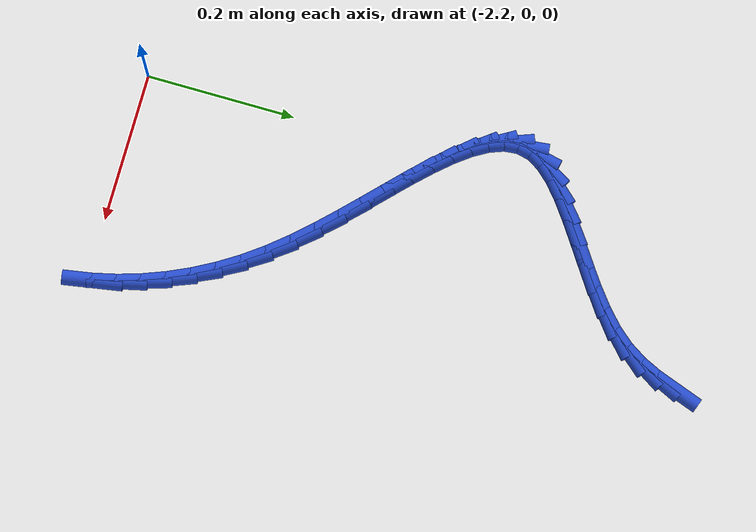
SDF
<sdf version="1.6">
 <world name="default">
  <model name="ground_plane">
   <static>1</static>
   <link name="link">
    <collision name="collision">
     <geometry><plane><normal>0 0 1</normal><size>100 100</size></plane></geometry>
     <surface><friction><ode><mu>100</mu><mu2>50</mu2></ode></friction></surface>
    </collision>
    <visual name="visual">
     <cast_shadows>0</cast_shadows>
     <geometry><plane><normal>0 0 1</normal><size>100 100</size></plane></geometry>
     <material>
      <script><uri>file://media/materials/scripts/gazebo.material</uri><name>Gazebo/WhiteGlow</name></script>
     </material>
    </visual>
   </link>
  </model>
  <model name="line">
   <link name="link_101">
    <pose>-1.989718927837971 0.7740408875233407 0.01 0 1.57 1.2281230694968996</pose>
    <collision name="collision">
     <geometry><cylinder><radius>0.01</radius><length>0.08</length></cylinder></geometry>
    </collision>
    <visual name="visual">
     <material>
      <script><name>Gazebo/Blue</name><uri>file://media/materials/scripts/gazebo.material</uri></script>
     </material>
     <geometry><cylinder><radius>0.01</radius><length>0.08</length></cylinder></geometry>
    </visual>
   </link>
   <link name="link_102">
    <pose>-1.9985928313291121 0.7491664212634195 0.01 0 1.57 1.1372513741942067</pose>
    <collision name="collision">
     <geometry><cylinder><radius>0.01</radius><length>0.08</length></cylinder></geometry>
    </collision>
    <visual name="visual">
     <material>
      <script><name>Gazebo/Blue</name><uri>file://media/materials/scripts/gazebo.material</uri></script>
     </material>
     <geometry><cylinder><radius>0.01</radius><length>0.08</length></cylinder></geometry>
    </visual>
   </link>
   <link name="link_103">
    <pose>-2.009655615822736 0.7252685168896204 0.01 0 1.57 1.0129075534866114</pose>
    <collision name="collision">
     <geometry><cylinder><radius>0.01</radius><length>0.08</length></cylinder></geometry>
    </collision>
    <visual name="visual">
     <material>
      <script><name>Gazebo/Blue</name><uri>file://media/materials/scripts/gazebo.material</uri></script>
     </material>
     <geometry><cylinder><radius>0.01</radius><length>0.08</length></cylinder></geometry>
    </visual>
   </link>
   <link name="link_104">
    <pose>-2.023889792720782 0.7024577870938563 0.01 0 1.57 0.8680745862333583</pose>
    <collision name="collision">
     <geometry><cylinder><radius>0.01</radius><length>0.08</length></cylinder></geometry>
    </collision>
    <visual name="visual">
     <material>
      <script><name>Gazebo/Blue</name><uri>file://media/materials/scripts/gazebo.material</uri></script>
     </material>
     <geometry><cylinder><radius>0.01</radius><length>0.08</length></cylinder></geometry>
    </visual>
   </link>
   <link name="link_105">
    <pose>-2.042203598726954 0.6808345886525705 0.01 0 1.57 0.746647845884592</pose>
    <collision name="collision">
     <geometry><cylinder><radius>0.01</radius><length>0.08</length></cylinder></geometry>
    </collision>
    <visual name="visual">
     <material>
      <script><name>Gazebo/Blue</name><uri>file://media/materials/scripts/gazebo.material</uri></script>
     </material>
     <geometry><cylinder><radius>0.01</radius><length>0.08</length></cylinder></geometry>
    </visual>
   </link>
   <link name="link_106">
    <pose>-2.064351465288317 0.6603399599005182 0.01 0 1.57 0.6670799395043605</pose>
    <collision name="collision">
     <geometry><cylinder><radius>0.01</radius><length>0.08</length></cylinder></geometry>
    </collision>
    <visual name="visual">
     <material>
      <script><name>Gazebo/Blue</name><uri>file://media/materials/scripts/gazebo.material</uri></script>
     </material>
     <geometry><cylinder><radius>0.01</radius><length>0.08</length></cylinder></geometry>
    </visual>
   </link>
   <link name="link_107">
    <pose>-2.089177405664466 0.6407892278307188 0.01 0 1.57 0.6200627013909632</pose>
    <collision name="collision">
     <geometry><cylinder><radius>0.01</radius><length>0.08</length></cylinder></geometry>
    </collision>
    <visual name="visual">
     <material>
      <script><name>Gazebo/Blue</name><uri>file://media/materials/scripts/gazebo.material</uri></script>
     </material>
     <geometry><cylinder><radius>0.01</radius><length>0.08</length></cylinder></geometry>
    </visual>
   </link>
   <link name="link_108">
    <pose>-2.11550069392952 0.6219943034277668 0.01 0 1.57 0.6000476247120247</pose>
    <collision name="collision">
     <geometry><cylinder><radius>0.01</radius><length>0.08</length></cylinder></geometry>
    </collision>
    <visual name="visual">
     <material>
      <script><name>Gazebo/Blue</name><uri>file://media/materials/scripts/gazebo.material</uri></script>
     </material>
     <geometry><cylinder><radius>0.01</radius><length>0.08</length></cylinder></geometry>
    </visual>
   </link>
   <link name="link_109">
    <pose>-2.1421406041575985 0.6037670976762564 0.01 0 1.57 0.6056177564336322</pose>
    <collision name="collision">
     <geometry><cylinder><radius>0.01</radius><length>0.08</length></cylinder></geometry>
    </collision>
    <visual name="visual">
     <material>
      <script><name>Gazebo/Blue</name><uri>file://media/materials/scripts/gazebo.material</uri></script>
     </material>
     <geometry><cylinder><radius>0.01</radius><length>0.08</length></cylinder></geometry>
    </visual>
   </link>
   <link name="link_110">
    <pose>-2.167916410422823 0.5859195215607815 0.01 0 1.57 0.6396551651343554</pose>
    <collision name="collision">
     <geometry><cylinder><radius>0.01</radius><length>0.08</length></cylinder></geometry>
    </collision>
    <visual name="visual">
     <material>
      <script><name>Gazebo/Blue</name><uri>file://media/materials/scripts/gazebo.material</uri></script>
     </material>
     <geometry><cylinder><radius>0.01</radius><length>0.08</length></cylinder></geometry>
    </visual>
   </link>
   <link name="link_111">
    <pose>-2.191647386799312 0.5682634860659367 0.01 0 1.57 0.7107732179370065</pose>
    <collision name="collision">
     <geometry><cylinder><radius>0.01</radius><length>0.08</length></cylinder></geometry>
    </collision>
    <visual name="visual">
     <material>
      <script><name>Gazebo/Blue</name><uri>file://media/materials/scripts/gazebo.material</uri></script>
     </material>
     <geometry><cylinder><radius>0.01</radius><length>0.08</length></cylinder></geometry>
    </visual>
   </link>
   <link name="link_112">
    <pose>-2.2121528073611842 0.5506109021763154 0.01 0 1.57 0.8365693896061742</pose>
    <collision name="collision">
     <geometry><cylinder><radius>0.01</radius><length>0.08</length></cylinder></geometry>
    </collision>
    <visual name="visual">
     <material>
      <script><name>Gazebo/Blue</name><uri>file://media/materials/scripts/gazebo.material</uri></script>
     </material>
     <geometry><cylinder><radius>0.01</radius><length>0.08</length></cylinder></geometry>
    </visual>
   </link>
   <link name="link_113">
    <pose>-2.228251946182559 0.5327736808765124 0.01 0 1.57 1.0472546811766927</pose>
    <collision name="collision">
     <geometry><cylinder><radius>0.01</radius><length>0.08</length></cylinder></geometry>
    </collision>
    <visual name="visual">
     <material>
      <script><name>Gazebo/Blue</name><uri>file://media/materials/scripts/gazebo.material</uri></script>
     </material>
     <geometry><cylinder><radius>0.01</radius><length>0.08</length></cylinder></geometry>
    </visual>
   </link>
   <link name="link_114">
    <pose>-2.2387640773375574 0.5145637331511214 0.01 0 1.57 1.3580380193083357</pose>
    <collision name="collision">
     <geometry><cylinder><radius>0.01</radius><length>0.08</length></cylinder></geometry>
    </collision>
    <visual name="visual">
     <material>
      <script><name>Gazebo/Blue</name><uri>file://media/materials/scripts/gazebo.material</uri></script>
     </material>
     <geometry><cylinder><radius>0.01</radius><length>0.08</length></cylinder></geometry>
    </visual>
   </link>
   <link name="link_115">
    <pose>-2.2428133318251313 0.49581959396469344 0.01 0 1.57 -1.4657527311636047</pose>
    <collision name="collision">
     <geometry><cylinder><radius>0.01</radius><length>0.08</length></cylinder></geometry>
    </collision>
    <visual name="visual">
     <material>
      <script><name>Gazebo/Blue</name><uri>file://media/materials/scripts/gazebo.material</uri></script>
     </material>
     <geometry><cylinder><radius>0.01</radius><length>0.08</length></cylinder></geometry>
    </visual>
   </link>
   <link name="link_116">
    <pose>-2.2407752846477593 0.47648909027206515 0.01 0 1.57 -1.214189429568064</pose>
    <collision name="collision">
     <geometry><cylinder><radius>0.01</radius><length>0.08</length></cylinder></geometry>
    </collision>
    <visual name="visual">
     <material>
      <script><name>Gazebo/Blue</name><uri>file://media/materials/scripts/gazebo.material</uri></script>
     </material>
     <geometry><cylinder><radius>0.01</radius><length>0.08</length></cylinder></geometry>
    </visual>
   </link>
   <link name="link_117">
    <pose>-2.233346584917426 0.4565480892986384 0.01 0 1.57 -1.038372405205886</pose>
    <collision name="collision">
     <geometry><cylinder><radius>0.01</radius><length>0.08</length></cylinder></geometry>
    </collision>
    <visual name="visual">
     <material>
      <script><name>Gazebo/Blue</name><uri>file://media/materials/scripts/gazebo.material</uri></script>
     </material>
     <geometry><cylinder><radius>0.01</radius><length>0.08</length></cylinder></geometry>
    </visual>
   </link>
   <link name="link_118">
    <pose>-2.221223881947815 0.4359724582874302 0.01 0 1.57 -0.9214658819094608</pose>
    <collision name="collision">
     <geometry><cylinder><radius>0.01</radius><length>0.08</length></cylinder></geometry>
    </collision>
    <visual name="visual">
     <material>
      <script><name>Gazebo/Blue</name><uri>file://media/materials/scripts/gazebo.material</uri></script>
     </material>
     <geometry><cylinder><radius>0.01</radius><length>0.08</length></cylinder></geometry>
    </visual>
   </link>
   <link name="link_119">
    <pose>-2.205103825052612 0.41473806448145795 0.01 0 1.57 -0.8457178741382008</pose>
    <collision name="collision">
     <geometry><cylinder><radius>0.01</radius><length>0.08</length></cylinder></geometry>
    </collision>
    <visual name="visual">
     <material>
      <script><name>Gazebo/Blue</name><uri>file://media/materials/scripts/gazebo.material</uri></script>
     </material>
     <geometry><cylinder><radius>0.01</radius><length>0.08</length></cylinder></geometry>
    </visual>
   </link>
   <link name="link_120">
    <pose>-2.1856830635455 0.39282077512373836 0.01 0 1.57 -0.798824287903566</pose>
    <collision name="collision">
     <geometry><cylinder><radius>0.01</radius><length>0.08</length></cylinder></geometry>
    </collision>
    <visual name="visual">
     <material>
      <script><name>Gazebo/Blue</name><uri>file://media/materials/scripts/gazebo.material</uri></script>
     </material>
     <geometry><cylinder><radius>0.01</radius><length>0.08</length></cylinder></geometry>
    </visual>
   </link>
   <link name="link_121">
    <pose>-2.163658246740164 0.3701964574572889 0.01 0 1.57 -0.7732022764339753</pose>
    <collision name="collision">
     <geometry><cylinder><radius>0.01</radius><length>0.08</length></cylinder></geometry>
    </collision>
    <visual name="visual">
     <material>
      <script><name>Gazebo/Blue</name><uri>file://media/materials/scripts/gazebo.material</uri></script>
     </material>
     <geometry><cylinder><radius>0.01</radius><length>0.08</length></cylinder></geometry>
    </visual>
   </link>
   <link name="link_122">
    <pose>-2.139726023950288 0.3468409787251263 0.01 0 1.57 -0.76444431133646</pose>
    <collision name="collision">
     <geometry><cylinder><radius>0.01</radius><length>0.08</length></cylinder></geometry>
    </collision>
    <visual name="visual">
     <material>
      <script><name>Gazebo/Blue</name><uri>file://media/materials/scripts/gazebo.material</uri></script>
     </material>
     <geometry><cylinder><radius>0.01</radius><length>0.08</length></cylinder></geometry>
    </visual>
   </link>
   <link name="link_123">
    <pose>-2.1145830444895557 0.3227302061702682 0.01 0 1.57 -0.7702276386843632</pose>
    <collision name="collision">
     <geometry><cylinder><radius>0.01</radius><length>0.08</length></cylinder></geometry>
    </collision>
    <visual name="visual">
     <material>
      <script><name>Gazebo/Blue</name><uri>file://media/materials/scripts/gazebo.material</uri></script>
     </material>
     <geometry><cylinder><radius>0.01</radius><length>0.08</length></cylinder></geometry>
    </visual>
   </link>
   <link name="link_124">
    <pose>-2.0889259576716523 0.29784000703573105 0.01 0 1.57 -0.7896823052272332</pose>
    <collision name="collision">
     <geometry><cylinder><radius>0.01</radius><length>0.08</length></cylinder></geometry>
    </collision>
    <visual name="visual">
     <material>
      <script><name>Gazebo/Blue</name><uri>file://media/materials/scripts/gazebo.material</uri></script>
     </material>
     <geometry><cylinder><radius>0.01</radius><length>0.08</length></cylinder></geometry>
    </visual>
   </link>
   <link name="link_125">
    <pose>-2.063451412810261 0.2721462485645321 0.01 0 1.57 -0.8230606546280428</pose>
    <collision name="collision">
     <geometry><cylinder><radius>0.01</radius><length>0.08</length></cylinder></geometry>
    </collision>
    <visual name="visual">
     <material>
      <script><name>Gazebo/Blue</name><uri>file://media/materials/scripts/gazebo.material</uri></script>
     </material>
     <geometry><cylinder><radius>0.01</radius><length>0.08</length></cylinder></geometry>
    </visual>
   </link>
   <link name="link_126">
    <pose>-2.038856059219066 0.2456247979996885 0.01 0 1.57 -0.8715806930155267</pose>
    <collision name="collision">
     <geometry><cylinder><radius>0.01</radius><length>0.08</length></cylinder></geometry>
    </collision>
    <visual name="visual">
     <material>
      <script><name>Gazebo/Blue</name><uri>file://media/materials/scripts/gazebo.material</uri></script>
     </material>
     <geometry><cylinder><radius>0.01</radius><length>0.08</length></cylinder></geometry>
    </visual>
   </link>
   <link name="link_127">
    <pose>-2.0158365462117525 0.21825152258421734 0.01 0 1.57 -0.9350123772903233</pose>
    <collision name="collision">
     <geometry><cylinder><radius>0.01</radius><length>0.08</length></cylinder></geometry>
    </collision>
    <visual name="visual">
     <material>
      <script><name>Gazebo/Blue</name><uri>file://media/materials/scripts/gazebo.material</uri></script>
     </material>
     <geometry><cylinder><radius>0.01</radius><length>0.08</length></cylinder></geometry>
    </visual>
   </link>
   <link name="link_128">
    <pose>-1.9950012161960455 0.19001979236508468 0.01 0 1.57 -1.0024605051776008</pose>
    <collision name="collision">
     <geometry><cylinder><radius>0.01</radius><length>0.08</length></cylinder></geometry>
    </collision>
    <visual name="visual">
     <material>
      <script><name>Gazebo/Blue</name><uri>file://media/materials/scripts/gazebo.material</uri></script>
     </material>
     <geometry><cylinder><radius>0.01</radius><length>0.08</length></cylinder></geometry>
    </visual>
   </link>
   <link name="link_129">
    <pose>-1.9764798868647735 0.16101782302084658 0.01 0 1.57 -1.069761245623709</pose>
    <collision name="collision">
     <geometry><cylinder><radius>0.01</radius><length>0.08</length></cylinder></geometry>
    </collision>
    <visual name="visual">
     <material>
      <script><name>Gazebo/Blue</name><uri>file://media/materials/scripts/gazebo.material</uri></script>
     </material>
     <geometry><cylinder><radius>0.01</radius><length>0.08</length></cylinder></geometry>
    </visual>
   </link>
   <link name="link_130">
    <pose>-1.9602410420456855 0.13136580728757383 0.01 0 1.57 -1.136807732305426</pose>
    <collision name="collision">
     <geometry><cylinder><radius>0.01</radius><length>0.08</length></cylinder></geometry>
    </collision>
    <visual name="visual">
     <material>
      <script><name>Gazebo/Blue</name><uri>file://media/materials/scripts/gazebo.material</uri></script>
     </material>
     <geometry><cylinder><radius>0.01</radius><length>0.08</length></cylinder></geometry>
    </visual>
   </link>
   <link name="link_131">
    <pose>-1.9462530419449144 0.10118396240366713 0.01 0 1.57 -1.203541330567025</pose>
    <collision name="collision">
     <geometry><cylinder><radius>0.01</radius><length>0.08</length></cylinder></geometry>
    </collision>
    <visual name="visual">
     <material>
      <script><name>Gazebo/Blue</name><uri>file://media/materials/scripts/gazebo.material</uri></script>
     </material>
     <geometry><cylinder><radius>0.01</radius><length>0.08</length></cylinder></geometry>
    </visual>
   </link>
   <link name="link_132">
    <pose>-1.9344842467685923 0.07059250560752682 0.01 0 1.57 -1.2699494206891093</pose>
    <collision name="collision">
     <geometry><cylinder><radius>0.01</radius><length>0.08</length></cylinder></geometry>
    </collision>
    <visual name="visual">
     <material>
      <script><name>Gazebo/Blue</name><uri>file://media/materials/scripts/gazebo.material</uri></script>
     </material>
     <geometry><cylinder><radius>0.01</radius><length>0.08</length></cylinder></geometry>
    </visual>
   </link>
   <link name="link_133">
    <pose>-1.9249030167228516 0.03971165413755349 0.01 0 1.57 -1.3360646422301565</pose>
    <collision name="collision">
     <geometry><cylinder><radius>0.01</radius><length>0.08</length></cylinder></geometry>
    </collision>
    <visual name="visual">
     <material>
      <script><name>Gazebo/Blue</name><uri>file://media/materials/scripts/gazebo.material</uri></script>
     </material>
     <geometry><cylinder><radius>0.01</radius><length>0.08</length></cylinder></geometry>
    </visual>
   </link>
   <link name="link_134">
    <pose>-1.9174777120138247 0.008661625232148086 0.01 0 1.57 -1.4019627025900374</pose>
    <collision name="collision">
     <geometry><cylinder><radius>0.01</radius><length>0.08</length></cylinder></geometry>
    </collision>
    <visual name="visual">
     <material>
      <script><name>Gazebo/Blue</name><uri>file://media/materials/scripts/gazebo.material</uri></script>
     </material>
     <geometry><cylinder><radius>0.01</radius><length>0.08</length></cylinder></geometry>
    </visual>
   </link>
  </model>
 </world>
</sdf>
